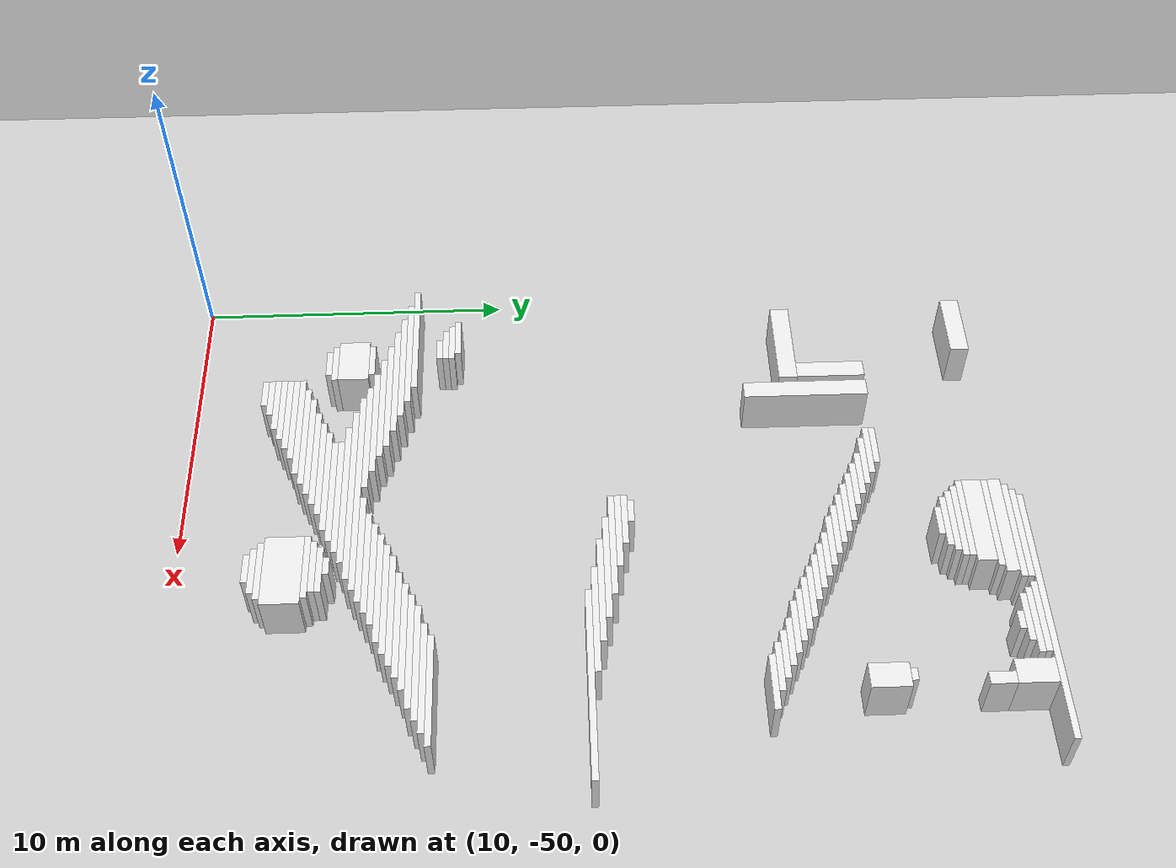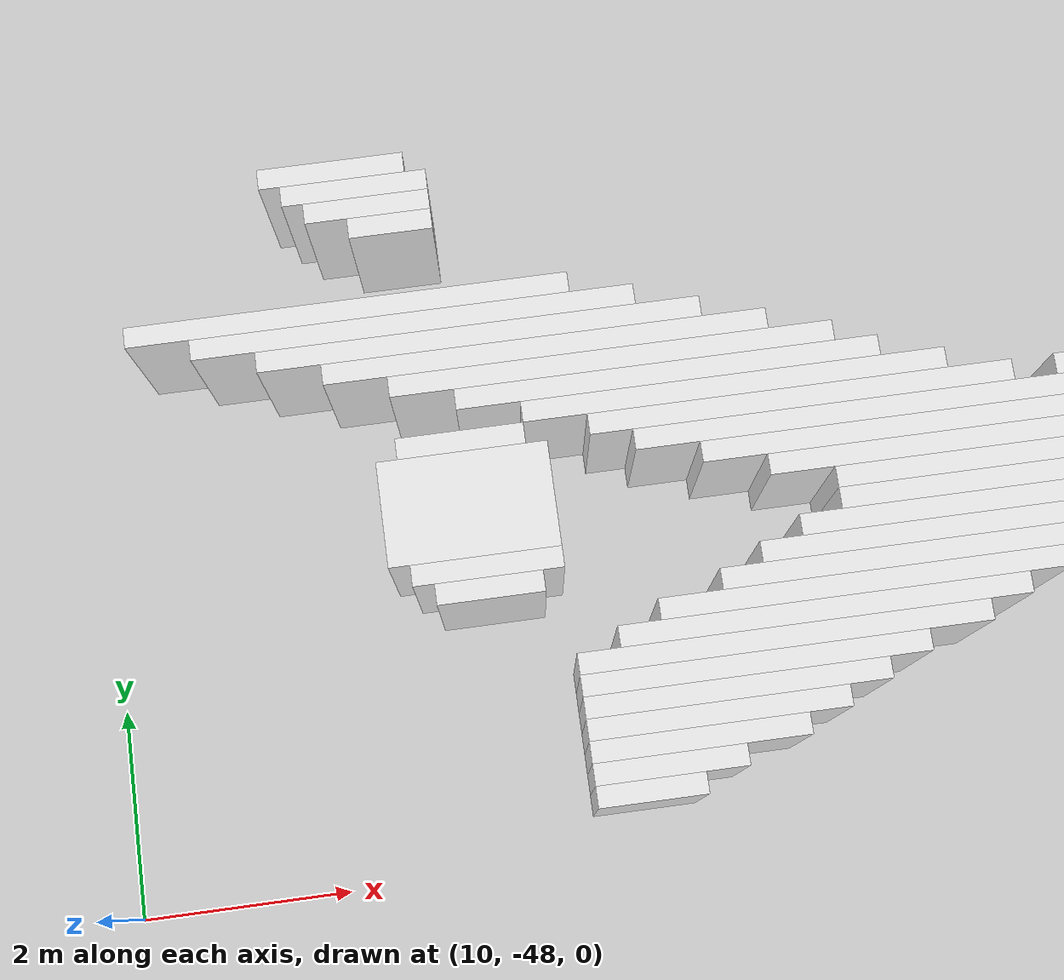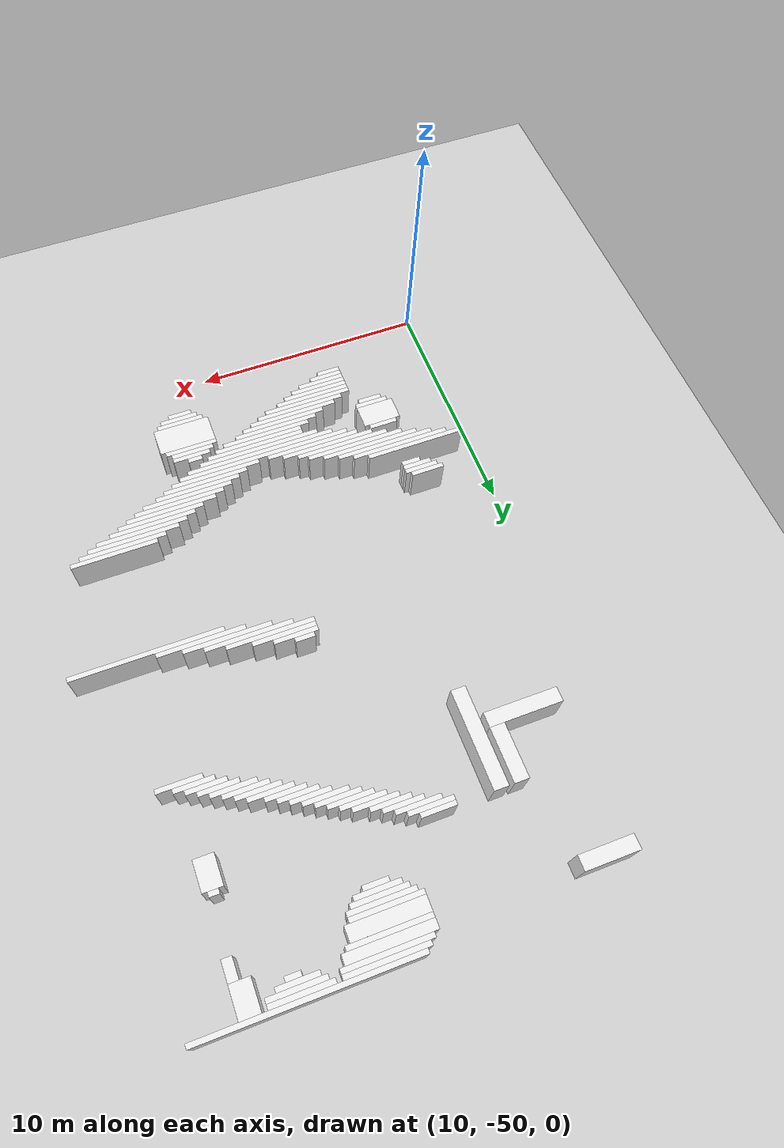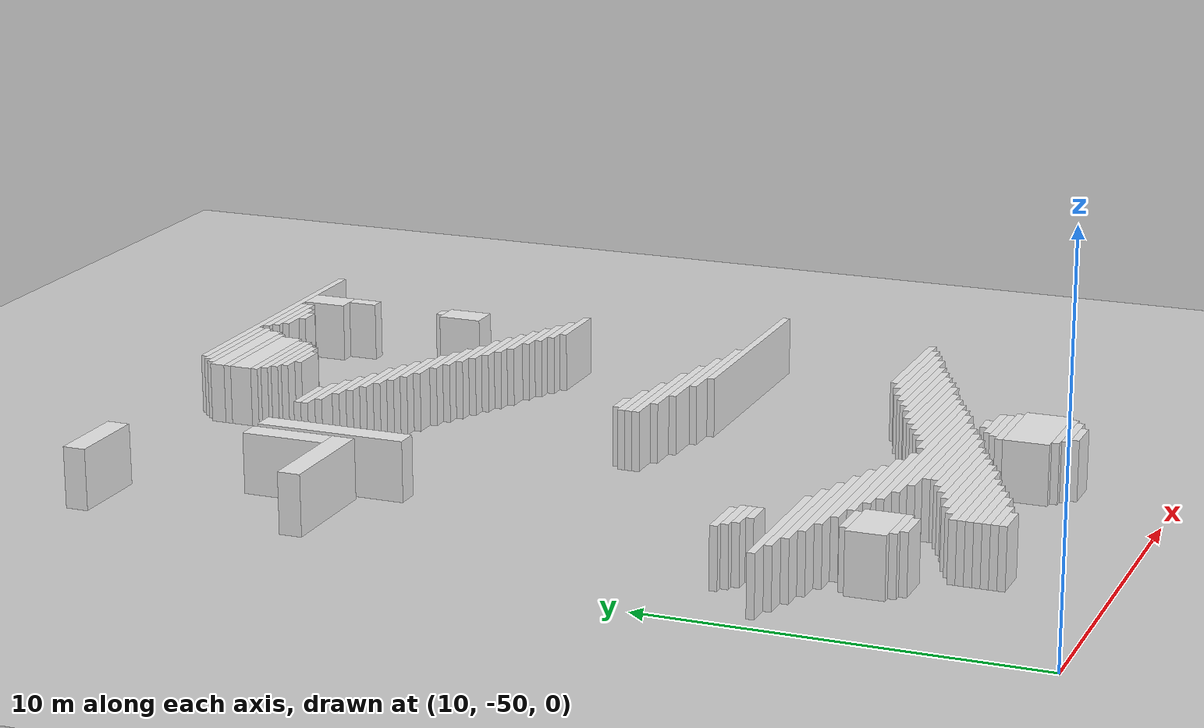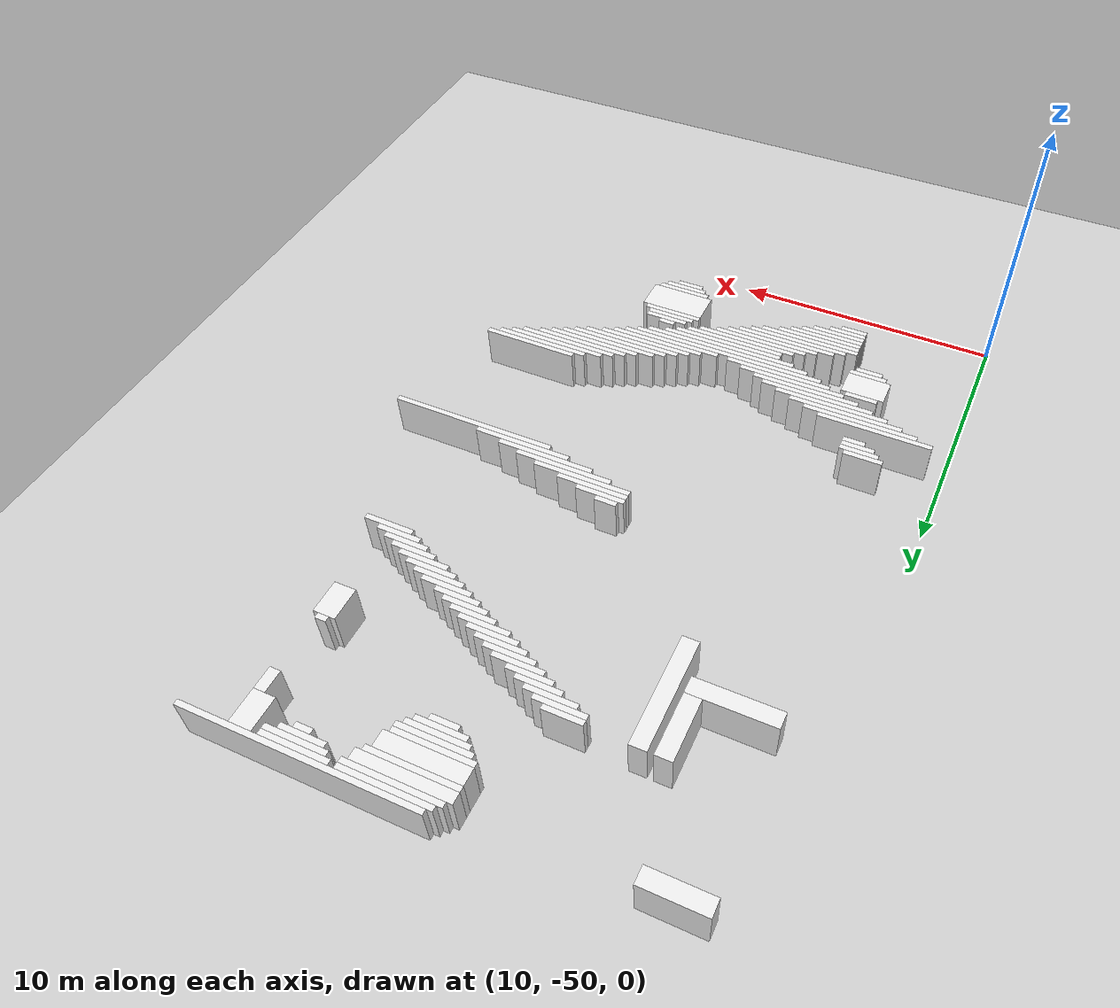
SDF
<sdf version="1.7">
 <world name="default">
  <model name="ground_plane">
   <static>1</static>
   <link name="link">
    <collision name="collision">
     <geometry><plane><normal>0 0 1</normal><size>120 120</size></plane></geometry>
    </collision>
    <visual name="visual">
     <geometry><plane><normal>0 0 1</normal><size>120 120</size></plane></geometry>
     <material>
      <script><uri>file://media/materials/scripts/gazebo.material</uri><name>Gazebo/Grey</name></script>
     </material>
    </visual>
   </link>
  </model>
  <model name="random_complex_02_model">
   <static>1</static>
   <link name="obs_2907">
    <pose>24.0000 -23.9000 0.8000 0 0 0</pose>
    <collision name="obs_2907_col"><geometry><box><size>8.4000 0.2000 1.6000</size></box></geometry></collision>
    <visual name="obs_2907_vis">
     <geometry><box><size>8.4000 0.2000 1.6000</size></box></geometry>
     <material>
      <script><uri>file://media/materials/scripts/gazebo.material</uri><name>Gazebo/White</name></script>
     </material>
    </visual>
   </link>
   <link name="obs_2915">
    <pose>21.2000 -24.1000 0.8000 0 0 0</pose>
    <collision name="obs_2915_col"><geometry><box><size>3.2000 0.2000 1.6000</size></box></geometry></collision>
    <visual name="obs_2915_vis">
     <geometry><box><size>3.2000 0.2000 1.6000</size></box></geometry>
     <material>
      <script><uri>file://media/materials/scripts/gazebo.material</uri><name>Gazebo/White</name></script>
     </material>
    </visual>
   </link>
   <link name="obs_2916">
    <pose>24.2000 -24.1000 0.8000 0 0 0</pose>
    <collision name="obs_2916_col"><geometry><box><size>2.4000 0.2000 1.6000</size></box></geometry></collision>
    <visual name="obs_2916_vis">
     <geometry><box><size>2.4000 0.2000 1.6000</size></box></geometry>
     <material>
      <script><uri>file://media/materials/scripts/gazebo.material</uri><name>Gazebo/White</name></script>
     </material>
    </visual>
   </link>
   <link name="obs_2924">
    <pose>21.1000 -24.3000 0.8000 0 0 0</pose>
    <collision name="obs_2924_col"><geometry><box><size>3.4000 0.2000 1.6000</size></box></geometry></collision>
    <visual name="obs_2924_vis">
     <geometry><box><size>3.4000 0.2000 1.6000</size></box></geometry>
     <material>
      <script><uri>file://media/materials/scripts/gazebo.material</uri><name>Gazebo/White</name></script>
     </material>
    </visual>
   </link>
   <link name="obs_2925">
    <pose>24.3000 -24.3000 0.8000 0 0 0</pose>
    <collision name="obs_2925_col"><geometry><box><size>2.2000 0.2000 1.6000</size></box></geometry></collision>
    <visual name="obs_2925_vis">
     <geometry><box><size>2.2000 0.2000 1.6000</size></box></geometry>
     <material>
      <script><uri>file://media/materials/scripts/gazebo.material</uri><name>Gazebo/White</name></script>
     </material>
    </visual>
   </link>
   <link name="obs_2931">
    <pose>24.2000 -24.5000 0.8000 0 0 0</pose>
    <collision name="obs_2931_col"><geometry><box><size>1.6000 0.2000 1.6000</size></box></geometry></collision>
    <visual name="obs_2931_vis">
     <geometry><box><size>1.6000 0.2000 1.6000</size></box></geometry>
     <material>
      <script><uri>file://media/materials/scripts/gazebo.material</uri><name>Gazebo/White</name></script>
     </material>
    </visual>
   </link>
   <link name="obs_2935">
    <pose>20.9000 -24.6000 0.8000 0 0 0</pose>
    <collision name="obs_2935_col"><geometry><box><size>3.4000 0.4000 1.6000</size></box></geometry></collision>
    <visual name="obs_2935_vis">
     <geometry><box><size>3.4000 0.4000 1.6000</size></box></geometry>
     <material>
      <script><uri>file://media/materials/scripts/gazebo.material</uri><name>Gazebo/White</name></script>
     </material>
    </visual>
   </link>
   <link name="obs_2939">
    <pose>24.3000 -24.7000 0.8000 0 0 0</pose>
    <collision name="obs_2939_col"><geometry><box><size>0.6000 0.2000 1.6000</size></box></geometry></collision>
    <visual name="obs_2939_vis">
     <geometry><box><size>0.6000 0.2000 1.6000</size></box></geometry>
     <material>
      <script><uri>file://media/materials/scripts/gazebo.material</uri><name>Gazebo/White</name></script>
     </material>
    </visual>
   </link>
   <link name="obs_2942">
    <pose>12.7000 -24.7000 0.8000 0 0 0</pose>
    <collision name="obs_2942_col"><geometry><box><size>2.2000 0.6000 1.6000</size></box></geometry></collision>
    <visual name="obs_2942_vis">
     <geometry><box><size>2.2000 0.6000 1.6000</size></box></geometry>
     <material>
      <script><uri>file://media/materials/scripts/gazebo.material</uri><name>Gazebo/White</name></script>
     </material>
    </visual>
   </link>
   <link name="obs_2945">
    <pose>20.8000 -24.9000 0.8000 0 0 0</pose>
    <collision name="obs_2945_col"><geometry><box><size>3.2000 0.2000 1.6000</size></box></geometry></collision>
    <visual name="obs_2945_vis">
     <geometry><box><size>3.2000 0.2000 1.6000</size></box></geometry>
     <material>
      <script><uri>file://media/materials/scripts/gazebo.material</uri><name>Gazebo/White</name></script>
     </material>
    </visual>
   </link>
   <link name="obs_2949">
    <pose>26.0000 -24.6000 0.8000 0 0 0</pose>
    <collision name="obs_2949_col"><geometry><box><size>0.8000 1.2000 1.6000</size></box></geometry></collision>
    <visual name="obs_2949_vis">
     <geometry><box><size>0.8000 1.2000 1.6000</size></box></geometry>
     <material>
      <script><uri>file://media/materials/scripts/gazebo.material</uri><name>Gazebo/White</name></script>
     </material>
    </visual>
   </link>
   <link name="obs_2965">
    <pose>20.7000 -25.3000 0.8000 0 0 0</pose>
    <collision name="obs_2965_col"><geometry><box><size>3.0000 0.6000 1.6000</size></box></geometry></collision>
    <visual name="obs_2965_vis">
     <geometry><box><size>3.0000 0.6000 1.6000</size></box></geometry>
     <material>
      <script><uri>file://media/materials/scripts/gazebo.material</uri><name>Gazebo/White</name></script>
     </material>
    </visual>
   </link>
   <link name="obs_2975">
    <pose>20.6000 -25.7000 0.8000 0 0 0</pose>
    <collision name="obs_2975_col"><geometry><box><size>2.8000 0.2000 1.6000</size></box></geometry></collision>
    <visual name="obs_2975_vis">
     <geometry><box><size>2.8000 0.2000 1.6000</size></box></geometry>
     <material>
      <script><uri>file://media/materials/scripts/gazebo.material</uri><name>Gazebo/White</name></script>
     </material>
    </visual>
   </link>
   <link name="obs_2978">
    <pose>26.2000 -25.6000 0.8000 0 0 0</pose>
    <collision name="obs_2978_col"><geometry><box><size>0.4000 0.8000 1.6000</size></box></geometry></collision>
    <visual name="obs_2978_vis">
     <geometry><box><size>0.4000 0.8000 1.6000</size></box></geometry>
     <material>
      <script><uri>file://media/materials/scripts/gazebo.material</uri><name>Gazebo/White</name></script>
     </material>
    </visual>
   </link>
   <link name="obs_2980">
    <pose>20.7000 -25.9000 0.8000 0 0 0</pose>
    <collision name="obs_2980_col"><geometry><box><size>2.6000 0.2000 1.6000</size></box></geometry></collision>
    <visual name="obs_2980_vis">
     <geometry><box><size>2.6000 0.2000 1.6000</size></box></geometry>
     <material>
      <script><uri>file://media/materials/scripts/gazebo.material</uri><name>Gazebo/White</name></script>
     </material>
    </visual>
   </link>
   <link name="obs_2986">
    <pose>20.7000 -26.1000 0.8000 0 0 0</pose>
    <collision name="obs_2986_col"><geometry><box><size>2.2000 0.2000 1.6000</size></box></geometry></collision>
    <visual name="obs_2986_vis">
     <geometry><box><size>2.2000 0.2000 1.6000</size></box></geometry>
     <material>
      <script><uri>file://media/materials/scripts/gazebo.material</uri><name>Gazebo/White</name></script>
     </material>
    </visual>
   </link>
   <link name="obs_2992">
    <pose>20.7000 -26.3000 0.8000 0 0 0</pose>
    <collision name="obs_2992_col"><geometry><box><size>1.8000 0.2000 1.6000</size></box></geometry></collision>
    <visual name="obs_2992_vis">
     <geometry><box><size>1.8000 0.2000 1.6000</size></box></geometry>
     <material>
      <script><uri>file://media/materials/scripts/gazebo.material</uri><name>Gazebo/White</name></script>
     </material>
    </visual>
   </link>
   <link name="obs_2997">
    <pose>20.7000 -26.5000 0.8000 0 0 0</pose>
    <collision name="obs_2997_col"><geometry><box><size>1.0000 0.2000 1.6000</size></box></geometry></collision>
    <visual name="obs_2997_vis">
     <geometry><box><size>1.0000 0.2000 1.6000</size></box></geometry>
     <material>
      <script><uri>file://media/materials/scripts/gazebo.material</uri><name>Gazebo/White</name></script>
     </material>
    </visual>
   </link>
   <link name="obs_3030">
    <pose>17.7000 -28.1000 0.8000 0 0 0</pose>
    <collision name="obs_3030_col"><geometry><box><size>1.4000 0.2000 1.6000</size></box></geometry></collision>
    <visual name="obs_3030_vis">
     <geometry><box><size>1.4000 0.2000 1.6000</size></box></geometry>
     <material>
      <script><uri>file://media/materials/scripts/gazebo.material</uri><name>Gazebo/White</name></script>
     </material>
    </visual>
   </link>
   <link name="obs_3031">
    <pose>26.0000 -28.1000 0.8000 0 0 0</pose>
    <collision name="obs_3031_col"><geometry><box><size>0.4000 0.2000 1.6000</size></box></geometry></collision>
    <visual name="obs_3031_vis">
     <geometry><box><size>0.4000 0.2000 1.6000</size></box></geometry>
     <material>
      <script><uri>file://media/materials/scripts/gazebo.material</uri><name>Gazebo/White</name></script>
     </material>
    </visual>
   </link>
   <link name="obs_3035">
    <pose>17.9000 -28.3000 0.8000 0 0 0</pose>
    <collision name="obs_3035_col"><geometry><box><size>1.8000 0.2000 1.6000</size></box></geometry></collision>
    <visual name="obs_3035_vis">
     <geometry><box><size>1.8000 0.2000 1.6000</size></box></geometry>
     <material>
      <script><uri>file://media/materials/scripts/gazebo.material</uri><name>Gazebo/White</name></script>
     </material>
    </visual>
   </link>
   <link name="obs_3039">
    <pose>18.3000 -28.5000 0.8000 0 0 0</pose>
    <collision name="obs_3039_col"><geometry><box><size>1.8000 0.2000 1.6000</size></box></geometry></collision>
    <visual name="obs_3039_vis">
     <geometry><box><size>1.8000 0.2000 1.6000</size></box></geometry>
     <material>
      <script><uri>file://media/materials/scripts/gazebo.material</uri><name>Gazebo/White</name></script>
     </material>
    </visual>
   </link>
   <link name="obs_3044">
    <pose>18.8000 -28.7000 0.8000 0 0 0</pose>
    <collision name="obs_3044_col"><geometry><box><size>1.6000 0.2000 1.6000</size></box></geometry></collision>
    <visual name="obs_3044_vis">
     <geometry><box><size>1.6000 0.2000 1.6000</size></box></geometry>
     <material>
      <script><uri>file://media/materials/scripts/gazebo.material</uri><name>Gazebo/White</name></script>
     </material>
    </visual>
   </link>
   <link name="obs_3048">
    <pose>19.2000 -28.9000 0.8000 0 0 0</pose>
    <collision name="obs_3048_col"><geometry><box><size>1.6000 0.2000 1.6000</size></box></geometry></collision>
    <visual name="obs_3048_vis">
     <geometry><box><size>1.6000 0.2000 1.6000</size></box></geometry>
     <material>
      <script><uri>file://media/materials/scripts/gazebo.material</uri><name>Gazebo/White</name></script>
     </material>
    </visual>
   </link>
   <link name="obs_3054">
    <pose>19.7000 -29.1000 0.8000 0 0 0</pose>
    <collision name="obs_3054_col"><geometry><box><size>1.8000 0.2000 1.6000</size></box></geometry></collision>
    <visual name="obs_3054_vis">
     <geometry><box><size>1.8000 0.2000 1.6000</size></box></geometry>
     <material>
      <script><uri>file://media/materials/scripts/gazebo.material</uri><name>Gazebo/White</name></script>
     </material>
    </visual>
   </link>
   <link name="obs_3056">
    <pose>26.0000 -28.8000 0.8000 0 0 0</pose>
    <collision name="obs_3056_col"><geometry><box><size>0.8000 1.2000 1.6000</size></box></geometry></collision>
    <visual name="obs_3056_vis">
     <geometry><box><size>0.8000 1.2000 1.6000</size></box></geometry>
     <material>
      <script><uri>file://media/materials/scripts/gazebo.material</uri><name>Gazebo/White</name></script>
     </material>
    </visual>
   </link>
   <link name="obs_3061">
    <pose>20.1000 -29.3000 0.8000 0 0 0</pose>
    <collision name="obs_3061_col"><geometry><box><size>1.8000 0.2000 1.6000</size></box></geometry></collision>
    <visual name="obs_3061_vis">
     <geometry><box><size>1.8000 0.2000 1.6000</size></box></geometry>
     <material>
      <script><uri>file://media/materials/scripts/gazebo.material</uri><name>Gazebo/White</name></script>
     </material>
    </visual>
   </link>
   <link name="obs_3068">
    <pose>20.5000 -29.5000 0.8000 0 0 0</pose>
    <collision name="obs_3068_col"><geometry><box><size>1.8000 0.2000 1.6000</size></box></geometry></collision>
    <visual name="obs_3068_vis">
     <geometry><box><size>1.8000 0.2000 1.6000</size></box></geometry>
     <material>
      <script><uri>file://media/materials/scripts/gazebo.material</uri><name>Gazebo/White</name></script>
     </material>
    </visual>
   </link>
   <link name="obs_3075">
    <pose>20.9000 -29.7000 0.8000 0 0 0</pose>
    <collision name="obs_3075_col"><geometry><box><size>1.8000 0.2000 1.6000</size></box></geometry></collision>
    <visual name="obs_3075_vis">
     <geometry><box><size>1.8000 0.2000 1.6000</size></box></geometry>
     <material>
      <script><uri>file://media/materials/scripts/gazebo.material</uri><name>Gazebo/White</name></script>
     </material>
    </visual>
   </link>
   <link name="obs_3081">
    <pose>21.3000 -29.9000 0.8000 0 0 0</pose>
    <collision name="obs_3081_col"><geometry><box><size>1.8000 0.2000 1.6000</size></box></geometry></collision>
    <visual name="obs_3081_vis">
     <geometry><box><size>1.8000 0.2000 1.6000</size></box></geometry>
     <material>
      <script><uri>file://media/materials/scripts/gazebo.material</uri><name>Gazebo/White</name></script>
     </material>
    </visual>
   </link>
   <link name="obs_3085">
    <pose>14.5000 -29.1000 0.8000 0 0 0</pose>
    <collision name="obs_3085_col"><geometry><box><size>0.6000 2.2000 1.6000</size></box></geometry></collision>
    <visual name="obs_3085_vis">
     <geometry><box><size>0.6000 2.2000 1.6000</size></box></geometry>
     <material>
      <script><uri>file://media/materials/scripts/gazebo.material</uri><name>Gazebo/White</name></script>
     </material>
    </visual>
   </link>
   <link name="obs_3088">
    <pose>21.8000 -30.1000 0.8000 0 0 0</pose>
    <collision name="obs_3088_col"><geometry><box><size>1.6000 0.2000 1.6000</size></box></geometry></collision>
    <visual name="obs_3088_vis">
     <geometry><box><size>1.6000 0.2000 1.6000</size></box></geometry>
     <material>
      <script><uri>file://media/materials/scripts/gazebo.material</uri><name>Gazebo/White</name></script>
     </material>
    </visual>
   </link>
   <link name="obs_3092">
    <pose>22.2000 -30.3000 0.8000 0 0 0</pose>
    <collision name="obs_3092_col"><geometry><box><size>1.6000 0.2000 1.6000</size></box></geometry></collision>
    <visual name="obs_3092_vis">
     <geometry><box><size>1.6000 0.2000 1.6000</size></box></geometry>
     <material>
      <script><uri>file://media/materials/scripts/gazebo.material</uri><name>Gazebo/White</name></script>
     </material>
    </visual>
   </link>
   <link name="obs_3098">
    <pose>22.6000 -30.5000 0.8000 0 0 0</pose>
    <collision name="obs_3098_col"><geometry><box><size>1.6000 0.2000 1.6000</size></box></geometry></collision>
    <visual name="obs_3098_vis">
     <geometry><box><size>1.6000 0.2000 1.6000</size></box></geometry>
     <material>
      <script><uri>file://media/materials/scripts/gazebo.material</uri><name>Gazebo/White</name></script>
     </material>
    </visual>
   </link>
   <link name="obs_3101">
    <pose>13.3000 -30.5000 0.8000 0 0 0</pose>
    <collision name="obs_3101_col"><geometry><box><size>3.0000 0.6000 1.6000</size></box></geometry></collision>
    <visual name="obs_3101_vis">
     <geometry><box><size>3.0000 0.6000 1.6000</size></box></geometry>
     <material>
      <script><uri>file://media/materials/scripts/gazebo.material</uri><name>Gazebo/White</name></script>
     </material>
    </visual>
   </link>
   <link name="obs_3105">
    <pose>23.1000 -30.7000 0.8000 0 0 0</pose>
    <collision name="obs_3105_col"><geometry><box><size>1.8000 0.2000 1.6000</size></box></geometry></collision>
    <visual name="obs_3105_vis">
     <geometry><box><size>1.8000 0.2000 1.6000</size></box></geometry>
     <material>
      <script><uri>file://media/materials/scripts/gazebo.material</uri><name>Gazebo/White</name></script>
     </material>
    </visual>
   </link>
   <link name="obs_3111">
    <pose>23.5000 -30.9000 0.8000 0 0 0</pose>
    <collision name="obs_3111_col"><geometry><box><size>1.8000 0.2000 1.6000</size></box></geometry></collision>
    <visual name="obs_3111_vis">
     <geometry><box><size>1.8000 0.2000 1.6000</size></box></geometry>
     <material>
      <script><uri>file://media/materials/scripts/gazebo.material</uri><name>Gazebo/White</name></script>
     </material>
    </visual>
   </link>
   <link name="obs_3120">
    <pose>23.9000 -31.1000 0.8000 0 0 0</pose>
    <collision name="obs_3120_col"><geometry><box><size>1.8000 0.2000 1.6000</size></box></geometry></collision>
    <visual name="obs_3120_vis">
     <geometry><box><size>1.8000 0.2000 1.6000</size></box></geometry>
     <material>
      <script><uri>file://media/materials/scripts/gazebo.material</uri><name>Gazebo/White</name></script>
     </material>
    </visual>
   </link>
   <link name="obs_3125">
    <pose>24.3000 -31.3000 0.8000 0 0 0</pose>
    <collision name="obs_3125_col"><geometry><box><size>1.8000 0.2000 1.6000</size></box></geometry></collision>
    <visual name="obs_3125_vis">
     <geometry><box><size>1.8000 0.2000 1.6000</size></box></geometry>
     <material>
      <script><uri>file://media/materials/scripts/gazebo.material</uri><name>Gazebo/White</name></script>
     </material>
    </visual>
   </link>
   <link name="obs_3130">
    <pose>24.8000 -31.5000 0.8000 0 0 0</pose>
    <collision name="obs_3130_col"><geometry><box><size>1.6000 0.2000 1.6000</size></box></geometry></collision>
    <visual name="obs_3130_vis">
     <geometry><box><size>1.6000 0.2000 1.6000</size></box></geometry>
     <material>
      <script><uri>file://media/materials/scripts/gazebo.material</uri><name>Gazebo/White</name></script>
     </material>
    </visual>
   </link>
   <link name="obs_3136">
    <pose>25.2000 -31.7000 0.8000 0 0 0</pose>
    <collision name="obs_3136_col"><geometry><box><size>1.6000 0.2000 1.6000</size></box></geometry></collision>
    <visual name="obs_3136_vis">
     <geometry><box><size>1.6000 0.2000 1.6000</size></box></geometry>
     <material>
      <script><uri>file://media/materials/scripts/gazebo.material</uri><name>Gazebo/White</name></script>
     </material>
    </visual>
   </link>
   <link name="obs_3139">
    <pose>15.3000 -30.0000 0.8000 0 0 0</pose>
    <collision name="obs_3139_col"><geometry><box><size>0.6000 4.0000 1.6000</size></box></geometry></collision>
    <visual name="obs_3139_vis">
     <geometry><box><size>0.6000 4.0000 1.6000</size></box></geometry>
     <material>
      <script><uri>file://media/materials/scripts/gazebo.material</uri><name>Gazebo/White</name></script>
     </material>
    </visual>
   </link>
   <link name="obs_3147">
    <pose>25.6000 -31.9000 0.8000 0 0 0</pose>
    <collision name="obs_3147_col"><geometry><box><size>1.6000 0.2000 1.6000</size></box></geometry></collision>
    <visual name="obs_3147_vis">
     <geometry><box><size>1.6000 0.2000 1.6000</size></box></geometry>
     <material>
      <script><uri>file://media/materials/scripts/gazebo.material</uri><name>Gazebo/White</name></script>
     </material>
    </visual>
   </link>
   <link name="obs_3151">
    <pose>26.1000 -32.1000 0.8000 0 0 0</pose>
    <collision name="obs_3151_col"><geometry><box><size>1.8000 0.2000 1.6000</size></box></geometry></collision>
    <visual name="obs_3151_vis">
     <geometry><box><size>1.8000 0.2000 1.6000</size></box></geometry>
     <material>
      <script><uri>file://media/materials/scripts/gazebo.material</uri><name>Gazebo/White</name></script>
     </material>
    </visual>
   </link>
   <link name="obs_3206">
    <pose>20.0000 -35.9000 0.8000 0 0 0</pose>
    <collision name="obs_3206_col"><geometry><box><size>0.8000 0.2000 1.6000</size></box></geometry></collision>
    <visual name="obs_3206_vis">
     <geometry><box><size>0.8000 0.2000 1.6000</size></box></geometry>
     <material>
      <script><uri>file://media/materials/scripts/gazebo.material</uri><name>Gazebo/White</name></script>
     </material>
    </visual>
   </link>
   <link name="obs_3208">
    <pose>20.3000 -36.1000 0.8000 0 0 0</pose>
    <collision name="obs_3208_col"><geometry><box><size>1.8000 0.2000 1.6000</size></box></geometry></collision>
    <visual name="obs_3208_vis">
     <geometry><box><size>1.8000 0.2000 1.6000</size></box></geometry>
     <material>
      <script><uri>file://media/materials/scripts/gazebo.material</uri><name>Gazebo/White</name></script>
     </material>
    </visual>
   </link>
   <link name="obs_3212">
    <pose>20.7000 -36.3000 0.8000 0 0 0</pose>
    <collision name="obs_3212_col"><geometry><box><size>2.6000 0.2000 1.6000</size></box></geometry></collision>
    <visual name="obs_3212_vis">
     <geometry><box><size>2.6000 0.2000 1.6000</size></box></geometry>
     <material>
      <script><uri>file://media/materials/scripts/gazebo.material</uri><name>Gazebo/White</name></script>
     </material>
    </visual>
   </link>
   <link name="obs_3216">
    <pose>21.2000 -36.5000 0.8000 0 0 0</pose>
    <collision name="obs_3216_col"><geometry><box><size>3.6000 0.2000 1.6000</size></box></geometry></collision>
    <visual name="obs_3216_vis">
     <geometry><box><size>3.6000 0.2000 1.6000</size></box></geometry>
     <material>
      <script><uri>file://media/materials/scripts/gazebo.material</uri><name>Gazebo/White</name></script>
     </material>
    </visual>
   </link>
   <link name="obs_3219">
    <pose>22.0000 -36.7000 0.8000 0 0 0</pose>
    <collision name="obs_3219_col"><geometry><box><size>3.6000 0.2000 1.6000</size></box></geometry></collision>
    <visual name="obs_3219_vis">
     <geometry><box><size>3.6000 0.2000 1.6000</size></box></geometry>
     <material>
      <script><uri>file://media/materials/scripts/gazebo.material</uri><name>Gazebo/White</name></script>
     </material>
    </visual>
   </link>
   <link name="obs_3224">
    <pose>22.8000 -36.9000 0.8000 0 0 0</pose>
    <collision name="obs_3224_col"><geometry><box><size>3.6000 0.2000 1.6000</size></box></geometry></collision>
    <visual name="obs_3224_vis">
     <geometry><box><size>3.6000 0.2000 1.6000</size></box></geometry>
     <material>
      <script><uri>file://media/materials/scripts/gazebo.material</uri><name>Gazebo/White</name></script>
     </material>
    </visual>
   </link>
   <link name="obs_3231">
    <pose>23.8000 -37.1000 0.8000 0 0 0</pose>
    <collision name="obs_3231_col"><geometry><box><size>3.6000 0.2000 1.6000</size></box></geometry></collision>
    <visual name="obs_3231_vis">
     <geometry><box><size>3.6000 0.2000 1.6000</size></box></geometry>
     <material>
      <script><uri>file://media/materials/scripts/gazebo.material</uri><name>Gazebo/White</name></script>
     </material>
    </visual>
   </link>
   <link name="obs_3237">
    <pose>25.9000 -37.3000 0.8000 0 0 0</pose>
    <collision name="obs_3237_col"><geometry><box><size>6.2000 0.2000 1.6000</size></box></geometry></collision>
    <visual name="obs_3237_vis">
     <geometry><box><size>6.2000 0.2000 1.6000</size></box></geometry>
     <material>
      <script><uri>file://media/materials/scripts/gazebo.material</uri><name>Gazebo/White</name></script>
     </material>
    </visual>
   </link>
   <link name="obs_3356">
    <pose>12.7000 -41.3000 0.8000 0 0 0</pose>
    <collision name="obs_3356_col"><geometry><box><size>1.4000 0.2000 1.6000</size></box></geometry></collision>
    <visual name="obs_3356_vis">
     <geometry><box><size>1.4000 0.2000 1.6000</size></box></geometry>
     <material>
      <script><uri>file://media/materials/scripts/gazebo.material</uri><name>Gazebo/White</name></script>
     </material>
    </visual>
   </link>
   <link name="obs_3363">
    <pose>12.9000 -41.5000 0.8000 0 0 0</pose>
    <collision name="obs_3363_col"><geometry><box><size>1.4000 0.2000 1.6000</size></box></geometry></collision>
    <visual name="obs_3363_vis">
     <geometry><box><size>1.4000 0.2000 1.6000</size></box></geometry>
     <material>
      <script><uri>file://media/materials/scripts/gazebo.material</uri><name>Gazebo/White</name></script>
     </material>
    </visual>
   </link>
   <link name="obs_3373">
    <pose>13.0000 -41.7000 0.8000 0 0 0</pose>
    <collision name="obs_3373_col"><geometry><box><size>1.2000 0.2000 1.6000</size></box></geometry></collision>
    <visual name="obs_3373_vis">
     <geometry><box><size>1.2000 0.2000 1.6000</size></box></geometry>
     <material>
      <script><uri>file://media/materials/scripts/gazebo.material</uri><name>Gazebo/White</name></script>
     </material>
    </visual>
   </link>
   <link name="obs_3382">
    <pose>13.2000 -41.9000 0.8000 0 0 0</pose>
    <collision name="obs_3382_col"><geometry><box><size>0.8000 0.2000 1.6000</size></box></geometry></collision>
    <visual name="obs_3382_vis">
     <geometry><box><size>0.8000 0.2000 1.6000</size></box></geometry>
     <material>
      <script><uri>file://media/materials/scripts/gazebo.material</uri><name>Gazebo/White</name></script>
     </material>
    </visual>
   </link>
   <link name="obs_3383">
    <pose>26.0000 -41.9000 0.8000 0 0 0</pose>
    <collision name="obs_3383_col"><geometry><box><size>3.6000 0.2000 1.6000</size></box></geometry></collision>
    <visual name="obs_3383_vis">
     <geometry><box><size>3.6000 0.2000 1.6000</size></box></geometry>
     <material>
      <script><uri>file://media/materials/scripts/gazebo.material</uri><name>Gazebo/White</name></script>
     </material>
    </visual>
   </link>
   <link name="obs_3392">
    <pose>25.6000 -42.1000 0.8000 0 0 0</pose>
    <collision name="obs_3392_col"><geometry><box><size>3.6000 0.2000 1.6000</size></box></geometry></collision>
    <visual name="obs_3392_vis">
     <geometry><box><size>3.6000 0.2000 1.6000</size></box></geometry>
     <material>
      <script><uri>file://media/materials/scripts/gazebo.material</uri><name>Gazebo/White</name></script>
     </material>
    </visual>
   </link>
   <link name="obs_3399">
    <pose>25.1000 -42.3000 0.8000 0 0 0</pose>
    <collision name="obs_3399_col"><geometry><box><size>3.8000 0.2000 1.6000</size></box></geometry></collision>
    <visual name="obs_3399_vis">
     <geometry><box><size>3.8000 0.2000 1.6000</size></box></geometry>
     <material>
      <script><uri>file://media/materials/scripts/gazebo.material</uri><name>Gazebo/White</name></script>
     </material>
    </visual>
   </link>
   <link name="obs_3406">
    <pose>24.7000 -42.5000 0.8000 0 0 0</pose>
    <collision name="obs_3406_col"><geometry><box><size>3.8000 0.2000 1.6000</size></box></geometry></collision>
    <visual name="obs_3406_vis">
     <geometry><box><size>3.8000 0.2000 1.6000</size></box></geometry>
     <material>
      <script><uri>file://media/materials/scripts/gazebo.material</uri><name>Gazebo/White</name></script>
     </material>
    </visual>
   </link>
   <link name="obs_3409">
    <pose>12.7000 -42.7000 0.8000 0 0 0</pose>
    <collision name="obs_3409_col"><geometry><box><size>4.2000 0.2000 1.6000</size></box></geometry></collision>
    <visual name="obs_3409_vis">
     <geometry><box><size>4.2000 0.2000 1.6000</size></box></geometry>
     <material>
      <script><uri>file://media/materials/scripts/gazebo.material</uri><name>Gazebo/White</name></script>
     </material>
    </visual>
   </link>
   <link name="obs_3410">
    <pose>24.2000 -42.7000 0.8000 0 0 0</pose>
    <collision name="obs_3410_col"><geometry><box><size>3.6000 0.2000 1.6000</size></box></geometry></collision>
    <visual name="obs_3410_vis">
     <geometry><box><size>3.6000 0.2000 1.6000</size></box></geometry>
     <material>
      <script><uri>file://media/materials/scripts/gazebo.material</uri><name>Gazebo/White</name></script>
     </material>
    </visual>
   </link>
   <link name="obs_3418">
    <pose>13.3000 -42.9000 0.8000 0 0 0</pose>
    <collision name="obs_3418_col"><geometry><box><size>4.2000 0.2000 1.6000</size></box></geometry></collision>
    <visual name="obs_3418_vis">
     <geometry><box><size>4.2000 0.2000 1.6000</size></box></geometry>
     <material>
      <script><uri>file://media/materials/scripts/gazebo.material</uri><name>Gazebo/White</name></script>
     </material>
    </visual>
   </link>
   <link name="obs_3419">
    <pose>23.8000 -42.9000 0.8000 0 0 0</pose>
    <collision name="obs_3419_col"><geometry><box><size>3.6000 0.2000 1.6000</size></box></geometry></collision>
    <visual name="obs_3419_vis">
     <geometry><box><size>3.6000 0.2000 1.6000</size></box></geometry>
     <material>
      <script><uri>file://media/materials/scripts/gazebo.material</uri><name>Gazebo/White</name></script>
     </material>
    </visual>
   </link>
   <link name="obs_3425">
    <pose>13.9000 -43.1000 0.8000 0 0 0</pose>
    <collision name="obs_3425_col"><geometry><box><size>4.2000 0.2000 1.6000</size></box></geometry></collision>
    <visual name="obs_3425_vis">
     <geometry><box><size>4.2000 0.2000 1.6000</size></box></geometry>
     <material>
      <script><uri>file://media/materials/scripts/gazebo.material</uri><name>Gazebo/White</name></script>
     </material>
    </visual>
   </link>
   <link name="obs_3426">
    <pose>23.3000 -43.1000 0.8000 0 0 0</pose>
    <collision name="obs_3426_col"><geometry><box><size>3.8000 0.2000 1.6000</size></box></geometry></collision>
    <visual name="obs_3426_vis">
     <geometry><box><size>3.8000 0.2000 1.6000</size></box></geometry>
     <material>
      <script><uri>file://media/materials/scripts/gazebo.material</uri><name>Gazebo/White</name></script>
     </material>
    </visual>
   </link>
   <link name="obs_3433">
    <pose>14.5000 -43.3000 0.8000 0 0 0</pose>
    <collision name="obs_3433_col"><geometry><box><size>4.2000 0.2000 1.6000</size></box></geometry></collision>
    <visual name="obs_3433_vis">
     <geometry><box><size>4.2000 0.2000 1.6000</size></box></geometry>
     <material>
      <script><uri>file://media/materials/scripts/gazebo.material</uri><name>Gazebo/White</name></script>
     </material>
    </visual>
   </link>
   <link name="obs_3434">
    <pose>22.9000 -43.3000 0.8000 0 0 0</pose>
    <collision name="obs_3434_col"><geometry><box><size>3.8000 0.2000 1.6000</size></box></geometry></collision>
    <visual name="obs_3434_vis">
     <geometry><box><size>3.8000 0.2000 1.6000</size></box></geometry>
     <material>
      <script><uri>file://media/materials/scripts/gazebo.material</uri><name>Gazebo/White</name></script>
     </material>
    </visual>
   </link>
   <link name="obs_3438">
    <pose>15.1000 -43.5000 0.8000 0 0 0</pose>
    <collision name="obs_3438_col"><geometry><box><size>4.2000 0.2000 1.6000</size></box></geometry></collision>
    <visual name="obs_3438_vis">
     <geometry><box><size>4.2000 0.2000 1.6000</size></box></geometry>
     <material>
      <script><uri>file://media/materials/scripts/gazebo.material</uri><name>Gazebo/White</name></script>
     </material>
    </visual>
   </link>
   <link name="obs_3439">
    <pose>22.5000 -43.5000 0.8000 0 0 0</pose>
    <collision name="obs_3439_col"><geometry><box><size>3.8000 0.2000 1.6000</size></box></geometry></collision>
    <visual name="obs_3439_vis">
     <geometry><box><size>3.8000 0.2000 1.6000</size></box></geometry>
     <material>
      <script><uri>file://media/materials/scripts/gazebo.material</uri><name>Gazebo/White</name></script>
     </material>
    </visual>
   </link>
   <link name="obs_3445">
    <pose>15.6000 -43.7000 0.8000 0 0 0</pose>
    <collision name="obs_3445_col"><geometry><box><size>4.0000 0.2000 1.6000</size></box></geometry></collision>
    <visual name="obs_3445_vis">
     <geometry><box><size>4.0000 0.2000 1.6000</size></box></geometry>
     <material>
      <script><uri>file://media/materials/scripts/gazebo.material</uri><name>Gazebo/White</name></script>
     </material>
    </visual>
   </link>
   <link name="obs_3446">
    <pose>22.0000 -43.7000 0.8000 0 0 0</pose>
    <collision name="obs_3446_col"><geometry><box><size>3.6000 0.2000 1.6000</size></box></geometry></collision>
    <visual name="obs_3446_vis">
     <geometry><box><size>3.6000 0.2000 1.6000</size></box></geometry>
     <material>
      <script><uri>file://media/materials/scripts/gazebo.material</uri><name>Gazebo/White</name></script>
     </material>
    </visual>
   </link>
   <link name="obs_3456">
    <pose>16.2000 -43.9000 0.8000 0 0 0</pose>
    <collision name="obs_3456_col"><geometry><box><size>4.0000 0.2000 1.6000</size></box></geometry></collision>
    <visual name="obs_3456_vis">
     <geometry><box><size>4.0000 0.2000 1.6000</size></box></geometry>
     <material>
      <script><uri>file://media/materials/scripts/gazebo.material</uri><name>Gazebo/White</name></script>
     </material>
    </visual>
   </link>
   <link name="obs_3457">
    <pose>21.6000 -43.9000 0.8000 0 0 0</pose>
    <collision name="obs_3457_col"><geometry><box><size>3.6000 0.2000 1.6000</size></box></geometry></collision>
    <visual name="obs_3457_vis">
     <geometry><box><size>3.6000 0.2000 1.6000</size></box></geometry>
     <material>
      <script><uri>file://media/materials/scripts/gazebo.material</uri><name>Gazebo/White</name></script>
     </material>
    </visual>
   </link>
   <link name="obs_3466">
    <pose>13.6000 -44.1000 0.8000 0 0 0</pose>
    <collision name="obs_3466_col"><geometry><box><size>1.2000 0.2000 1.6000</size></box></geometry></collision>
    <visual name="obs_3466_vis">
     <geometry><box><size>1.2000 0.2000 1.6000</size></box></geometry>
     <material>
      <script><uri>file://media/materials/scripts/gazebo.material</uri><name>Gazebo/White</name></script>
     </material>
    </visual>
   </link>
   <link name="obs_3467">
    <pose>16.8000 -44.1000 0.8000 0 0 0</pose>
    <collision name="obs_3467_col"><geometry><box><size>4.0000 0.2000 1.6000</size></box></geometry></collision>
    <visual name="obs_3467_vis">
     <geometry><box><size>4.0000 0.2000 1.6000</size></box></geometry>
     <material>
      <script><uri>file://media/materials/scripts/gazebo.material</uri><name>Gazebo/White</name></script>
     </material>
    </visual>
   </link>
   <link name="obs_3468">
    <pose>21.1000 -44.1000 0.8000 0 0 0</pose>
    <collision name="obs_3468_col"><geometry><box><size>3.8000 0.2000 1.6000</size></box></geometry></collision>
    <visual name="obs_3468_vis">
     <geometry><box><size>3.8000 0.2000 1.6000</size></box></geometry>
     <material>
      <script><uri>file://media/materials/scripts/gazebo.material</uri><name>Gazebo/White</name></script>
     </material>
    </visual>
   </link>
   <link name="obs_3476">
    <pose>18.9000 -44.3000 0.8000 0 0 0</pose>
    <collision name="obs_3476_col"><geometry><box><size>7.4000 0.2000 1.6000</size></box></geometry></collision>
    <visual name="obs_3476_vis">
     <geometry><box><size>7.4000 0.2000 1.6000</size></box></geometry>
     <material>
      <script><uri>file://media/materials/scripts/gazebo.material</uri><name>Gazebo/White</name></script>
     </material>
    </visual>
   </link>
   <link name="obs_3482">
    <pose>19.0000 -44.5000 0.8000 0 0 0</pose>
    <collision name="obs_3482_col"><geometry><box><size>6.4000 0.2000 1.6000</size></box></geometry></collision>
    <visual name="obs_3482_vis">
     <geometry><box><size>6.4000 0.2000 1.6000</size></box></geometry>
     <material>
      <script><uri>file://media/materials/scripts/gazebo.material</uri><name>Gazebo/White</name></script>
     </material>
    </visual>
   </link>
   <link name="obs_3489">
    <pose>19.0000 -44.7000 0.8000 0 0 0</pose>
    <collision name="obs_3489_col"><geometry><box><size>5.2000 0.2000 1.6000</size></box></geometry></collision>
    <visual name="obs_3489_vis">
     <geometry><box><size>5.2000 0.2000 1.6000</size></box></geometry>
     <material>
      <script><uri>file://media/materials/scripts/gazebo.material</uri><name>Gazebo/White</name></script>
     </material>
    </visual>
   </link>
   <link name="obs_3499">
    <pose>19.1000 -44.9000 0.8000 0 0 0</pose>
    <collision name="obs_3499_col"><geometry><box><size>4.2000 0.2000 1.6000</size></box></geometry></collision>
    <visual name="obs_3499_vis">
     <geometry><box><size>4.2000 0.2000 1.6000</size></box></geometry>
     <material>
      <script><uri>file://media/materials/scripts/gazebo.material</uri><name>Gazebo/White</name></script>
     </material>
    </visual>
   </link>
   <link name="obs_3502">
    <pose>13.6000 -44.7000 0.8000 0 0 0</pose>
    <collision name="obs_3502_col"><geometry><box><size>1.6000 1.0000 1.6000</size></box></geometry></collision>
    <visual name="obs_3502_vis">
     <geometry><box><size>1.6000 1.0000 1.6000</size></box></geometry>
     <material>
      <script><uri>file://media/materials/scripts/gazebo.material</uri><name>Gazebo/White</name></script>
     </material>
    </visual>
   </link>
   <link name="obs_3508">
    <pose>18.9000 -45.1000 0.8000 0 0 0</pose>
    <collision name="obs_3508_col"><geometry><box><size>3.8000 0.2000 1.6000</size></box></geometry></collision>
    <visual name="obs_3508_vis">
     <geometry><box><size>3.8000 0.2000 1.6000</size></box></geometry>
     <material>
      <script><uri>file://media/materials/scripts/gazebo.material</uri><name>Gazebo/White</name></script>
     </material>
    </visual>
   </link>
   <link name="obs_3509">
    <pose>21.7000 -45.1000 0.8000 0 0 0</pose>
    <collision name="obs_3509_col"><geometry><box><size>0.6000 0.2000 1.6000</size></box></geometry></collision>
    <visual name="obs_3509_vis">
     <geometry><box><size>0.6000 0.2000 1.6000</size></box></geometry>
     <material>
      <script><uri>file://media/materials/scripts/gazebo.material</uri><name>Gazebo/White</name></script>
     </material>
    </visual>
   </link>
   <link name="obs_3518">
    <pose>13.7000 -45.3000 0.8000 0 0 0</pose>
    <collision name="obs_3518_col"><geometry><box><size>1.4000 0.2000 1.6000</size></box></geometry></collision>
    <visual name="obs_3518_vis">
     <geometry><box><size>1.4000 0.2000 1.6000</size></box></geometry>
     <material>
      <script><uri>file://media/materials/scripts/gazebo.material</uri><name>Gazebo/White</name></script>
     </material>
    </visual>
   </link>
   <link name="obs_3519">
    <pose>18.5000 -45.3000 0.8000 0 0 0</pose>
    <collision name="obs_3519_col"><geometry><box><size>3.8000 0.2000 1.6000</size></box></geometry></collision>
    <visual name="obs_3519_vis">
     <geometry><box><size>3.8000 0.2000 1.6000</size></box></geometry>
     <material>
      <script><uri>file://media/materials/scripts/gazebo.material</uri><name>Gazebo/White</name></script>
     </material>
    </visual>
   </link>
   <link name="obs_3520">
    <pose>21.8000 -45.3000 0.8000 0 0 0</pose>
    <collision name="obs_3520_col"><geometry><box><size>1.6000 0.2000 1.6000</size></box></geometry></collision>
    <visual name="obs_3520_vis">
     <geometry><box><size>1.6000 0.2000 1.6000</size></box></geometry>
     <material>
      <script><uri>file://media/materials/scripts/gazebo.material</uri><name>Gazebo/White</name></script>
     </material>
    </visual>
   </link>
   <link name="obs_3533">
    <pose>13.7000 -45.5000 0.8000 0 0 0</pose>
    <collision name="obs_3533_col"><geometry><box><size>1.0000 0.2000 1.6000</size></box></geometry></collision>
    <visual name="obs_3533_vis">
     <geometry><box><size>1.0000 0.2000 1.6000</size></box></geometry>
     <material>
      <script><uri>file://media/materials/scripts/gazebo.material</uri><name>Gazebo/White</name></script>
     </material>
    </visual>
   </link>
   <link name="obs_3534">
    <pose>18.0000 -45.5000 0.8000 0 0 0</pose>
    <collision name="obs_3534_col"><geometry><box><size>3.6000 0.2000 1.6000</size></box></geometry></collision>
    <visual name="obs_3534_vis">
     <geometry><box><size>3.6000 0.2000 1.6000</size></box></geometry>
     <material>
      <script><uri>file://media/materials/scripts/gazebo.material</uri><name>Gazebo/White</name></script>
     </material>
    </visual>
   </link>
   <link name="obs_3535">
    <pose>21.7000 -45.5000 0.8000 0 0 0</pose>
    <collision name="obs_3535_col"><geometry><box><size>1.8000 0.2000 1.6000</size></box></geometry></collision>
    <visual name="obs_3535_vis">
     <geometry><box><size>1.8000 0.2000 1.6000</size></box></geometry>
     <material>
      <script><uri>file://media/materials/scripts/gazebo.material</uri><name>Gazebo/White</name></script>
     </material>
    </visual>
   </link>
   <link name="obs_3542">
    <pose>17.6000 -45.7000 0.8000 0 0 0</pose>
    <collision name="obs_3542_col"><geometry><box><size>3.6000 0.2000 1.6000</size></box></geometry></collision>
    <visual name="obs_3542_vis">
     <geometry><box><size>3.6000 0.2000 1.6000</size></box></geometry>
     <material>
      <script><uri>file://media/materials/scripts/gazebo.material</uri><name>Gazebo/White</name></script>
     </material>
    </visual>
   </link>
   <link name="obs_3543">
    <pose>21.7000 -45.7000 0.8000 0 0 0</pose>
    <collision name="obs_3543_col"><geometry><box><size>2.2000 0.2000 1.6000</size></box></geometry></collision>
    <visual name="obs_3543_vis">
     <geometry><box><size>2.2000 0.2000 1.6000</size></box></geometry>
     <material>
      <script><uri>file://media/materials/scripts/gazebo.material</uri><name>Gazebo/White</name></script>
     </material>
    </visual>
   </link>
   <link name="obs_3551">
    <pose>17.1000 -45.9000 0.8000 0 0 0</pose>
    <collision name="obs_3551_col"><geometry><box><size>3.8000 0.2000 1.6000</size></box></geometry></collision>
    <visual name="obs_3551_vis">
     <geometry><box><size>3.8000 0.2000 1.6000</size></box></geometry>
     <material>
      <script><uri>file://media/materials/scripts/gazebo.material</uri><name>Gazebo/White</name></script>
     </material>
    </visual>
   </link>
   <link name="obs_3557">
    <pose>16.7000 -46.1000 0.8000 0 0 0</pose>
    <collision name="obs_3557_col"><geometry><box><size>3.8000 0.2000 1.6000</size></box></geometry></collision>
    <visual name="obs_3557_vis">
     <geometry><box><size>3.8000 0.2000 1.6000</size></box></geometry>
     <material>
      <script><uri>file://media/materials/scripts/gazebo.material</uri><name>Gazebo/White</name></script>
     </material>
    </visual>
   </link>
   <link name="obs_3567">
    <pose>16.3000 -46.3000 0.8000 0 0 0</pose>
    <collision name="obs_3567_col"><geometry><box><size>3.8000 0.2000 1.6000</size></box></geometry></collision>
    <visual name="obs_3567_vis">
     <geometry><box><size>3.8000 0.2000 1.6000</size></box></geometry>
     <material>
      <script><uri>file://media/materials/scripts/gazebo.material</uri><name>Gazebo/White</name></script>
     </material>
    </visual>
   </link>
   <link name="obs_3573">
    <pose>16.0000 -46.5000 0.8000 0 0 0</pose>
    <collision name="obs_3573_col"><geometry><box><size>3.2000 0.2000 1.6000</size></box></geometry></collision>
    <visual name="obs_3573_vis">
     <geometry><box><size>3.2000 0.2000 1.6000</size></box></geometry>
     <material>
      <script><uri>file://media/materials/scripts/gazebo.material</uri><name>Gazebo/White</name></script>
     </material>
    </visual>
   </link>
   <link name="obs_3582">
    <pose>15.8000 -46.7000 0.8000 0 0 0</pose>
    <collision name="obs_3582_col"><geometry><box><size>2.8000 0.2000 1.6000</size></box></geometry></collision>
    <visual name="obs_3582_vis">
     <geometry><box><size>2.8000 0.2000 1.6000</size></box></geometry>
     <material>
      <script><uri>file://media/materials/scripts/gazebo.material</uri><name>Gazebo/White</name></script>
     </material>
    </visual>
   </link>
   <link name="obs_3585">
    <pose>21.8000 -46.4000 0.8000 0 0 0</pose>
    <collision name="obs_3585_col"><geometry><box><size>2.4000 1.2000 1.6000</size></box></geometry></collision>
    <visual name="obs_3585_vis">
     <geometry><box><size>2.4000 1.2000 1.6000</size></box></geometry>
     <material>
      <script><uri>file://media/materials/scripts/gazebo.material</uri><name>Gazebo/White</name></script>
     </material>
    </visual>
   </link>
   <link name="obs_3590">
    <pose>15.6000 -46.9000 0.8000 0 0 0</pose>
    <collision name="obs_3590_col"><geometry><box><size>2.4000 0.2000 1.6000</size></box></geometry></collision>
    <visual name="obs_3590_vis">
     <geometry><box><size>2.4000 0.2000 1.6000</size></box></geometry>
     <material>
      <script><uri>file://media/materials/scripts/gazebo.material</uri><name>Gazebo/White</name></script>
     </material>
    </visual>
   </link>
   <link name="obs_3601">
    <pose>15.4000 -47.1000 0.8000 0 0 0</pose>
    <collision name="obs_3601_col"><geometry><box><size>2.0000 0.2000 1.6000</size></box></geometry></collision>
    <visual name="obs_3601_vis">
     <geometry><box><size>2.0000 0.2000 1.6000</size></box></geometry>
     <material>
      <script><uri>file://media/materials/scripts/gazebo.material</uri><name>Gazebo/White</name></script>
     </material>
    </visual>
   </link>
   <link name="obs_3602">
    <pose>21.8000 -47.1000 0.8000 0 0 0</pose>
    <collision name="obs_3602_col"><geometry><box><size>2.0000 0.2000 1.6000</size></box></geometry></collision>
    <visual name="obs_3602_vis">
     <geometry><box><size>2.0000 0.2000 1.6000</size></box></geometry>
     <material>
      <script><uri>file://media/materials/scripts/gazebo.material</uri><name>Gazebo/White</name></script>
     </material>
    </visual>
   </link>
   <link name="obs_3611">
    <pose>15.1000 -47.3000 0.8000 0 0 0</pose>
    <collision name="obs_3611_col"><geometry><box><size>1.4000 0.2000 1.6000</size></box></geometry></collision>
    <visual name="obs_3611_vis">
     <geometry><box><size>1.4000 0.2000 1.6000</size></box></geometry>
     <material>
      <script><uri>file://media/materials/scripts/gazebo.material</uri><name>Gazebo/White</name></script>
     </material>
    </visual>
   </link>
   <link name="obs_3612">
    <pose>21.8000 -47.3000 0.8000 0 0 0</pose>
    <collision name="obs_3612_col"><geometry><box><size>1.6000 0.2000 1.6000</size></box></geometry></collision>
    <visual name="obs_3612_vis">
     <geometry><box><size>1.6000 0.2000 1.6000</size></box></geometry>
     <material>
      <script><uri>file://media/materials/scripts/gazebo.material</uri><name>Gazebo/White</name></script>
     </material>
    </visual>
   </link>
   <link name="obs_3619">
    <pose>14.9000 -47.5000 0.8000 0 0 0</pose>
    <collision name="obs_3619_col"><geometry><box><size>1.0000 0.2000 1.6000</size></box></geometry></collision>
    <visual name="obs_3619_vis">
     <geometry><box><size>1.0000 0.2000 1.6000</size></box></geometry>
     <material>
      <script><uri>file://media/materials/scripts/gazebo.material</uri><name>Gazebo/White</name></script>
     </material>
    </visual>
   </link>
   <link name="obs_3620">
    <pose>21.7000 -47.5000 0.8000 0 0 0</pose>
    <collision name="obs_3620_col"><geometry><box><size>1.0000 0.2000 1.6000</size></box></geometry></collision>
    <visual name="obs_3620_vis">
     <geometry><box><size>1.0000 0.2000 1.6000</size></box></geometry>
     <material>
      <script><uri>file://media/materials/scripts/gazebo.material</uri><name>Gazebo/White</name></script>
     </material>
    </visual>
   </link>
  </model>
 </world>
</sdf>
